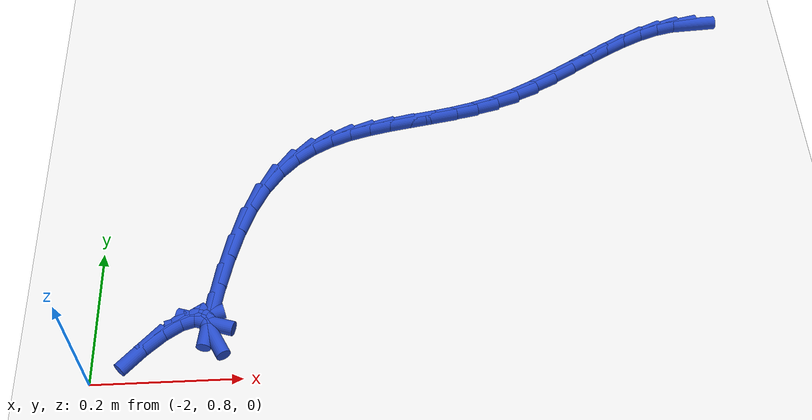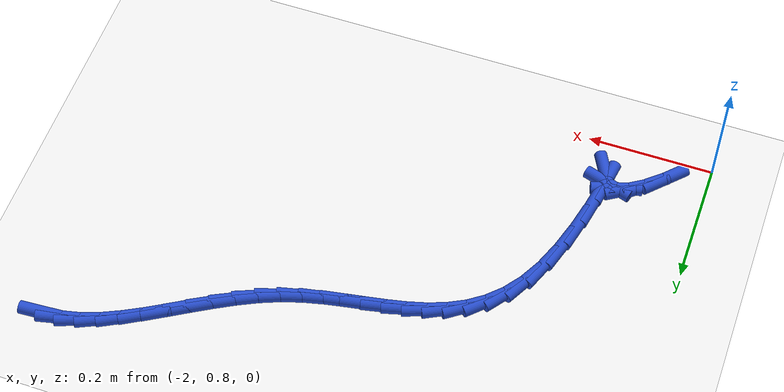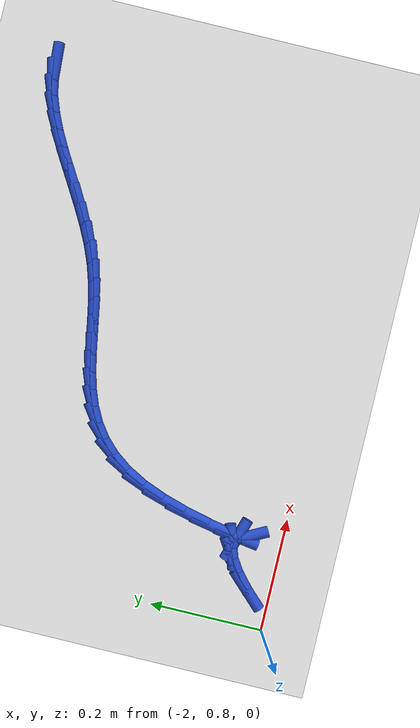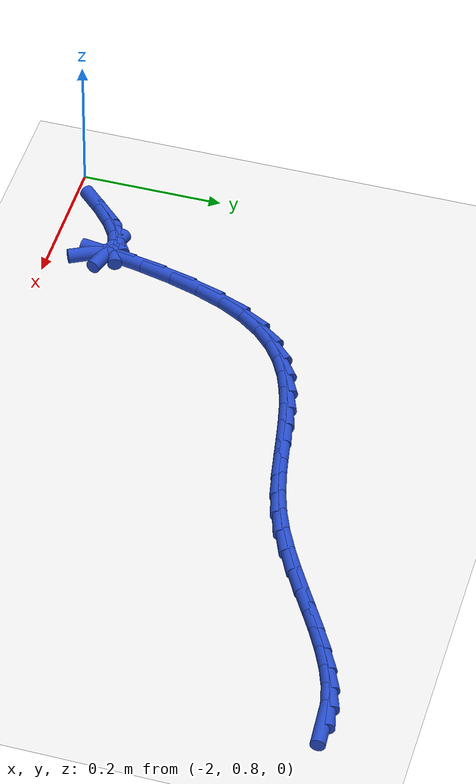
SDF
<sdf version="1.6">
 <world name="default">
  <model name="ground_plane">
   <static>1</static>
   <link name="link">
    <collision name="collision">
     <geometry><plane><normal>0 0 1</normal><size>100 100</size></plane></geometry>
     <surface><friction><ode><mu>100</mu><mu2>50</mu2></ode></friction></surface>
    </collision>
    <visual name="visual">
     <cast_shadows>0</cast_shadows>
     <geometry><plane><normal>0 0 1</normal><size>100 100</size></plane></geometry>
     <material>
      <script><uri>file://media/materials/scripts/gazebo.material</uri><name>Gazebo/WhiteGlow</name></script>
     </material>
    </visual>
   </link>
  </model>
  <model name="line">
   <link name="link_67">
    <pose>-1.120263568295055 1.3850597282895514 0.01 0 1.57 0.06633668072293741</pose>
    <collision name="collision">
     <geometry><cylinder><radius>0.01</radius><length>0.08</length></cylinder></geometry>
    </collision>
    <visual name="visual">
     <material>
      <script><name>Gazebo/Blue</name><uri>file://media/materials/scripts/gazebo.material</uri></script>
     </material>
     <geometry><cylinder><radius>0.01</radius><length>0.08</length></cylinder></geometry>
    </visual>
   </link>
   <link name="link_68">
    <pose>-1.1477044189930705 1.383236718468083 0.01 0 1.57 0.22767355937240513</pose>
    <collision name="collision">
     <geometry><cylinder><radius>0.01</radius><length>0.08</length></cylinder></geometry>
    </collision>
    <visual name="visual">
     <material>
      <script><name>Gazebo/Blue</name><uri>file://media/materials/scripts/gazebo.material</uri></script>
     </material>
     <geometry><cylinder><radius>0.01</radius><length>0.08</length></cylinder></geometry>
    </visual>
   </link>
   <link name="link_69">
    <pose>-1.17549461089899 1.3767979891579962 0.01 0 1.57 0.350042049003715</pose>
    <collision name="collision">
     <geometry><cylinder><radius>0.01</radius><length>0.08</length></cylinder></geometry>
    </collision>
    <visual name="visual">
     <material>
      <script><name>Gazebo/Blue</name><uri>file://media/materials/scripts/gazebo.material</uri></script>
     </material>
     <geometry><cylinder><radius>0.01</radius><length>0.08</length></cylinder></geometry>
    </visual>
   </link>
   <link name="link_70">
    <pose>-1.2036397258053926 1.366522879039307 0.01 0 1.57 0.43747749144335785</pose>
    <collision name="collision">
     <geometry><cylinder><radius>0.01</radius><length>0.08</length></cylinder></geometry>
    </collision>
    <visual name="visual">
     <material>
      <script><name>Gazebo/Blue</name><uri>file://media/materials/scripts/gazebo.material</uri></script>
     </material>
     <geometry><cylinder><radius>0.01</radius><length>0.08</length></cylinder></geometry>
    </visual>
   </link>
   <link name="link_71">
    <pose>-1.2321453455048577 1.3531907267920316 0.01 0 1.57 0.4956462332456958</pose>
    <collision name="collision">
     <geometry><cylinder><radius>0.01</radius><length>0.08</length></cylinder></geometry>
    </collision>
    <visual name="visual">
     <material>
      <script><name>Gazebo/Blue</name><uri>file://media/materials/scripts/gazebo.material</uri></script>
     </material>
     <geometry><cylinder><radius>0.01</radius><length>0.08</length></cylinder></geometry>
    </visual>
   </link>
   <link name="link_72">
    <pose>-1.2610170517899637 1.337580871096185 0.01 0 1.57 0.5293386302300274</pose>
    <collision name="collision">
     <geometry><cylinder><radius>0.01</radius><length>0.08</length></cylinder></geometry>
    </collision>
    <visual name="visual">
     <material>
      <script><name>Gazebo/Blue</name><uri>file://media/materials/scripts/gazebo.material</uri></script>
     </material>
     <geometry><cylinder><radius>0.01</radius><length>0.08</length></cylinder></geometry>
    </visual>
   </link>
   <link name="link_73">
    <pose>-1.2902604264532898 1.3204726506317834 0.01 0 1.57 0.54178050569388</pose>
    <collision name="collision">
     <geometry><cylinder><radius>0.01</radius><length>0.08</length></cylinder></geometry>
    </collision>
    <visual name="visual">
     <material>
      <script><name>Gazebo/Blue</name><uri>file://media/materials/scripts/gazebo.material</uri></script>
     </material>
     <geometry><cylinder><radius>0.01</radius><length>0.08</length></cylinder></geometry>
    </visual>
   </link>
   <link name="link_74">
    <pose>-1.3198810512874148 1.3026454040788429 0.01 0 1.57 0.5346369970760688</pose>
    <collision name="collision">
     <geometry><cylinder><radius>0.01</radius><length>0.08</length></cylinder></geometry>
    </collision>
    <visual name="visual">
     <material>
      <script><name>Gazebo/Blue</name><uri>file://media/materials/scripts/gazebo.material</uri></script>
     </material>
     <geometry><cylinder><radius>0.01</radius><length>0.08</length></cylinder></geometry>
    </visual>
   </link>
   <link name="link_75">
    <pose>-1.3498845080849176 1.2848784701173788 0.01 0 1.57 0.5081767593346558</pose>
    <collision name="collision">
     <geometry><cylinder><radius>0.01</radius><length>0.08</length></cylinder></geometry>
    </collision>
    <visual name="visual">
     <material>
      <script><name>Gazebo/Blue</name><uri>file://media/materials/scripts/gazebo.material</uri></script>
     </material>
     <geometry><cylinder><radius>0.01</radius><length>0.08</length></cylinder></geometry>
    </visual>
   </link>
   <link name="link_76">
    <pose>-1.3802763786383772 1.2679511874274074 0.01 0 1.57 0.46144573209425294</pose>
    <collision name="collision">
     <geometry><cylinder><radius>0.01</radius><length>0.08</length></cylinder></geometry>
    </collision>
    <visual name="visual">
     <material>
      <script><name>Gazebo/Blue</name><uri>file://media/materials/scripts/gazebo.material</uri></script>
     </material>
     <geometry><cylinder><radius>0.01</radius><length>0.08</length></cylinder></geometry>
    </visual>
   </link>
   <link name="link_77">
    <pose>-1.4110622447403727 1.2526428946889439 0.01 0 1.57 0.3924966422376244</pose>
    <collision name="collision">
     <geometry><cylinder><radius>0.01</radius><length>0.08</length></cylinder></geometry>
    </collision>
    <visual name="visual">
     <material>
      <script><name>Gazebo/Blue</name><uri>file://media/materials/scripts/gazebo.material</uri></script>
     </material>
     <geometry><cylinder><radius>0.01</radius><length>0.08</length></cylinder></geometry>
    </visual>
   </link>
   <link name="link_78">
    <pose>-1.442247677775406 1.2397328610869607 0.01 0 1.57 0.30837505712564617</pose>
    <collision name="collision">
     <geometry><cylinder><radius>0.01</radius><length>0.08</length></cylinder></geometry>
    </collision>
    <visual name="visual">
     <material>
      <script><name>Gazebo/Blue</name><uri>file://media/materials/scripts/gazebo.material</uri></script>
     </material>
     <geometry><cylinder><radius>0.01</radius><length>0.08</length></cylinder></geometry>
    </visual>
   </link>
   <link name="link_79">
    <pose>-1.473791040246976 1.2296851406745777 0.01 0 1.57 0.24010361996558577</pose>
    <collision name="collision">
     <geometry><cylinder><radius>0.01</radius><length>0.08</length></cylinder></geometry>
    </collision>
    <visual name="visual">
     <material>
      <script><name>Gazebo/Blue</name><uri>file://media/materials/scripts/gazebo.material</uri></script>
     </material>
     <geometry><cylinder><radius>0.01</radius><length>0.08</length></cylinder></geometry>
    </visual>
   </link>
   <link name="link_80">
    <pose>-1.5054948498453342 1.2219232069549921 0.01 0 1.57 0.1955762165548794</pose>
    <collision name="collision">
     <geometry><cylinder><radius>0.01</radius><length>0.08</length></cylinder></geometry>
    </collision>
    <visual name="visual">
     <material>
      <script><name>Gazebo/Blue</name><uri>file://media/materials/scripts/gazebo.material</uri></script>
     </material>
     <geometry><cylinder><radius>0.01</radius><length>0.08</length></cylinder></geometry>
    </visual>
   </link>
   <link name="link_81">
    <pose>-1.5371295106050475 1.2156561095773288 0.01 0 1.57 0.17570395236192568</pose>
    <collision name="collision">
     <geometry><cylinder><radius>0.01</radius><length>0.08</length></cylinder></geometry>
    </collision>
    <visual name="visual">
     <material>
      <script><name>Gazebo/Blue</name><uri>file://media/materials/scripts/gazebo.material</uri></script>
     </material>
     <geometry><cylinder><radius>0.01</radius><length>0.08</length></cylinder></geometry>
    </visual>
   </link>
   <link name="link_82">
    <pose>-1.5684654265606826 1.210092898190712 0.01 0 1.57 0.18138949973028573</pose>
    <collision name="collision">
     <geometry><cylinder><radius>0.01</radius><length>0.08</length></cylinder></geometry>
    </collision>
    <visual name="visual">
     <material>
      <script><name>Gazebo/Blue</name><uri>file://media/materials/scripts/gazebo.material</uri></script>
     </material>
     <geometry><cylinder><radius>0.01</radius><length>0.08</length></cylinder></geometry>
    </visual>
   </link>
   <link name="link_83">
    <pose>-1.5992730017468046 1.2044426224442655 0.01 0 1.57 0.21392595848407484</pose>
    <collision name="collision">
     <geometry><cylinder><radius>0.01</radius><length>0.08</length></cylinder></geometry>
    </collision>
    <visual name="visual">
     <material>
      <script><name>Gazebo/Blue</name><uri>file://media/materials/scripts/gazebo.material</uri></script>
     </material>
     <geometry><cylinder><radius>0.01</radius><length>0.08</length></cylinder></geometry>
    </visual>
   </link>
   <link name="link_84">
    <pose>-1.62932264019798 1.1979143319871142 0.01 0 1.57 0.2749178522982818</pose>
    <collision name="collision">
     <geometry><cylinder><radius>0.01</radius><length>0.08</length></cylinder></geometry>
    </collision>
    <visual name="visual">
     <material>
      <script><name>Gazebo/Blue</name><uri>file://media/materials/scripts/gazebo.material</uri></script>
     </material>
     <geometry><cylinder><radius>0.01</radius><length>0.08</length></cylinder></geometry>
    </visual>
   </link>
   <link name="link_85">
    <pose>-1.6583847459487748 1.1897170764683818 0.01 0 1.57 0.3655323432379172</pose>
    <collision name="collision">
     <geometry><cylinder><radius>0.01</radius><length>0.08</length></cylinder></geometry>
    </collision>
    <visual name="visual">
     <material>
      <script><name>Gazebo/Blue</name><uri>file://media/materials/scripts/gazebo.material</uri></script>
     </material>
     <geometry><cylinder><radius>0.01</radius><length>0.08</length></cylinder></geometry>
    </visual>
   </link>
   <link name="link_86">
    <pose>-1.6862297230337555 1.1790599055371926 0.01 0 1.57 0.4848996473523804</pose>
    <collision name="collision">
     <geometry><cylinder><radius>0.01</radius><length>0.08</length></cylinder></geometry>
    </collision>
    <visual name="visual">
     <material>
      <script><name>Gazebo/Blue</name><uri>file://media/materials/scripts/gazebo.material</uri></script>
     </material>
     <geometry><cylinder><radius>0.01</radius><length>0.08</length></cylinder></geometry>
    </visual>
   </link>
   <link name="link_87">
    <pose>-1.7126279754874885 1.1651518688426714 0.01 0 1.57 0.6280091808769468</pose>
    <collision name="collision">
     <geometry><cylinder><radius>0.01</radius><length>0.08</length></cylinder></geometry>
    </collision>
    <visual name="visual">
     <material>
      <script><name>Gazebo/Blue</name><uri>file://media/materials/scripts/gazebo.material</uri></script>
     </material>
     <geometry><cylinder><radius>0.01</radius><length>0.08</length></cylinder></geometry>
    </visual>
   </link>
   <link name="link_88">
    <pose>-1.7373499073445395 1.147202016033942 0.01 0 1.57 0.7846657727136952</pose>
    <collision name="collision">
     <geometry><cylinder><radius>0.01</radius><length>0.08</length></cylinder></geometry>
    </collision>
    <visual name="visual">
     <material>
      <script><name>Gazebo/Blue</name><uri>file://media/materials/scripts/gazebo.material</uri></script>
     </material>
     <geometry><cylinder><radius>0.01</radius><length>0.08</length></cylinder></geometry>
    </visual>
   </link>
   <link name="link_89">
    <pose>-1.7601659226394741 1.1244193967601286 0.01 0 1.57 0.9415086510454527</pose>
    <collision name="collision">
     <geometry><cylinder><radius>0.01</radius><length>0.08</length></cylinder></geometry>
    </collision>
    <visual name="visual">
     <material>
      <script><name>Gazebo/Blue</name><uri>file://media/materials/scripts/gazebo.material</uri></script>
     </material>
     <geometry><cylinder><radius>0.01</radius><length>0.08</length></cylinder></geometry>
    </visual>
   </link>
   <link name="link_90">
    <pose>-1.7808464254068597 1.0960130606703558 0.01 0 1.57 1.0865513808477625</pose>
    <collision name="collision">
     <geometry><cylinder><radius>0.01</radius><length>0.08</length></cylinder></geometry>
    </collision>
    <visual name="visual">
     <material>
      <script><name>Gazebo/Blue</name><uri>file://media/materials/scripts/gazebo.material</uri></script>
     </material>
     <geometry><cylinder><radius>0.01</radius><length>0.08</length></cylinder></geometry>
    </visual>
   </link>
   <link name="link_91">
    <pose>-1.799161971813257 1.0611938419358302 0.01 0 1.57 1.2045801075044997</pose>
    <collision name="collision">
     <geometry><cylinder><radius>0.01</radius><length>0.08</length></cylinder></geometry>
    </collision>
    <visual name="visual">
     <material>
      <script><name>Gazebo/Blue</name><uri>file://media/materials/scripts/gazebo.material</uri></script>
     </material>
     <geometry><cylinder><radius>0.01</radius><length>0.08</length></cylinder></geometry>
    </visual>
   </link>
   <link name="link_92">
    <pose>-1.814954899528617 1.020014578263957 0.01 0 1.57 1.2852623217474435</pose>
    <collision name="collision">
     <geometry><cylinder><radius>0.01</radius><length>0.08</length></cylinder></geometry>
    </collision>
    <visual name="visual">
     <material>
      <script><name>Gazebo/Blue</name><uri>file://media/materials/scripts/gazebo.material</uri></script>
     </material>
     <geometry><cylinder><radius>0.01</radius><length>0.08</length></cylinder></geometry>
    </visual>
   </link>
   <link name="link_93">
    <pose>-1.8282537242682793 0.9747119926971514 0.01 0 1.57 1.3429060380234228</pose>
    <collision name="collision">
     <geometry><cylinder><radius>0.01</radius><length>0.08</length></cylinder></geometry>
    </collision>
    <visual name="visual">
     <material>
      <script><name>Gazebo/Blue</name><uri>file://media/materials/scripts/gazebo.material</uri></script>
     </material>
     <geometry><cylinder><radius>0.01</radius><length>0.08</length></cylinder></geometry>
    </visual>
   </link>
   <link name="link_94">
    <pose>-1.8391167526498144 0.9278722582592532 0.01 0 1.57 1.387563524310892</pose>
    <collision name="collision">
     <geometry><cylinder><radius>0.01</radius><length>0.08</length></cylinder></geometry>
    </collision>
    <visual name="visual">
     <material>
      <script><name>Gazebo/Blue</name><uri>file://media/materials/scripts/gazebo.material</uri></script>
     </material>
     <geometry><cylinder><radius>0.01</radius><length>0.08</length></cylinder></geometry>
    </visual>
   </link>
   <link name="link_95">
    <pose>-1.8476022912907926 0.8820815479741007 0.01 0 1.57 1.4255500433936066</pose>
    <collision name="collision">
     <geometry><cylinder><radius>0.01</radius><length>0.08</length></cylinder></geometry>
    </collision>
    <visual name="visual">
     <material>
      <script><name>Gazebo/Blue</name><uri>file://media/materials/scripts/gazebo.material</uri></script>
     </material>
     <geometry><cylinder><radius>0.01</radius><length>0.08</length></cylinder></geometry>
    </visual>
   </link>
   <link name="link_104">
    <pose>-1.844488799689596 0.8655953131600611 0.01 0 1.57 -1.0910293590469333</pose>
    <collision name="collision">
     <geometry><cylinder><radius>0.01</radius><length>0.08</length></cylinder></geometry>
    </collision>
    <visual name="visual">
     <material>
      <script><name>Gazebo/Blue</name><uri>file://media/materials/scripts/gazebo.material</uri></script>
     </material>
     <geometry><cylinder><radius>0.01</radius><length>0.08</length></cylinder></geometry>
    </visual>
   </link>
   <link name="link_105">
    <pose>-1.852673728830584 0.8813260417607804 0.01 0 1.57 -0.30486576627497225</pose>
    <collision name="collision">
     <geometry><cylinder><radius>0.01</radius><length>0.08</length></cylinder></geometry>
    </collision>
    <visual name="visual">
     <material>
      <script><name>Gazebo/Blue</name><uri>file://media/materials/scripts/gazebo.material</uri></script>
     </material>
     <geometry><cylinder><radius>0.01</radius><length>0.08</length></cylinder></geometry>
    </visual>
   </link>
   <link name="link_106">
    <pose>-1.866611276148291 0.8857118491443886 0.01 0 1.57 0.2958655106791496</pose>
    <collision name="collision">
     <geometry><cylinder><radius>0.01</radius><length>0.08</length></cylinder></geometry>
    </collision>
    <visual name="visual">
     <material>
      <script><name>Gazebo/Blue</name><uri>file://media/materials/scripts/gazebo.material</uri></script>
     </material>
     <geometry><cylinder><radius>0.01</radius><length>0.08</length></cylinder></geometry>
    </visual>
   </link>
   <link name="link_107">
    <pose>-1.8853348565475387 0.880004679100726 0.01 0 1.57 0.573101267840648</pose>
    <collision name="collision">
     <geometry><cylinder><radius>0.01</radius><length>0.08</length></cylinder></geometry>
    </collision>
    <visual name="visual">
     <material>
      <script><name>Gazebo/Blue</name><uri>file://media/materials/scripts/gazebo.material</uri></script>
     </material>
     <geometry><cylinder><radius>0.01</radius><length>0.08</length></cylinder></geometry>
    </visual>
   </link>
   <link name="link_108">
    <pose>-1.9078778849331473 0.8654564754196327 0.01 0 1.57 0.716951091608903</pose>
    <collision name="collision">
     <geometry><cylinder><radius>0.01</radius><length>0.08</length></cylinder></geometry>
    </collision>
    <visual name="visual">
     <material>
      <script><name>Gazebo/Blue</name><uri>file://media/materials/scripts/gazebo.material</uri></script>
     </material>
     <geometry><cylinder><radius>0.01</radius><length>0.08</length></cylinder></geometry>
    </visual>
   </link>
   <link name="link_109">
    <pose>-1.9332737762099361 0.843319181890949 0.01 0 1.57 0.8067783884311314</pose>
    <collision name="collision">
     <geometry><cylinder><radius>0.01</radius><length>0.08</length></cylinder></geometry>
    </collision>
    <visual name="visual">
     <material>
      <script><name>Gazebo/Blue</name><uri>file://media/materials/scripts/gazebo.material</uri></script>
     </material>
     <geometry><cylinder><radius>0.01</radius><length>0.08</length></cylinder></geometry>
    </visual>
   </link>
  </model>
 </world>
</sdf>
